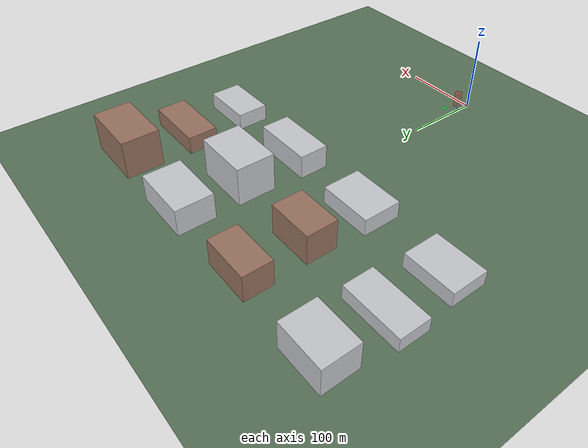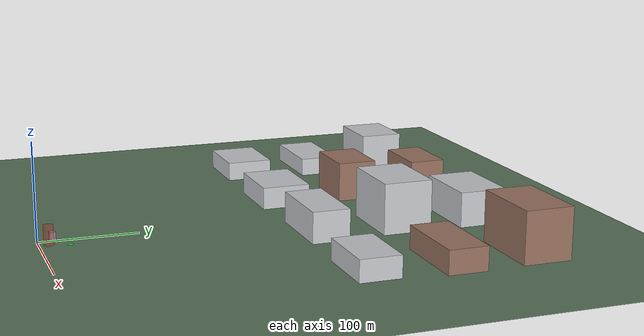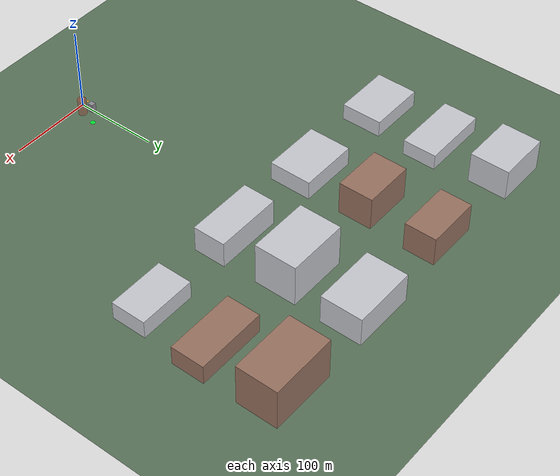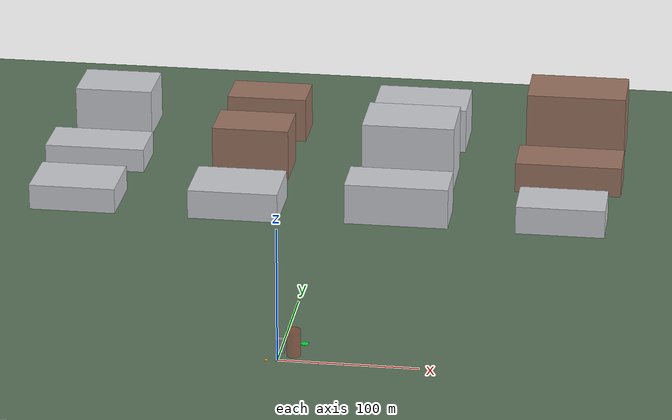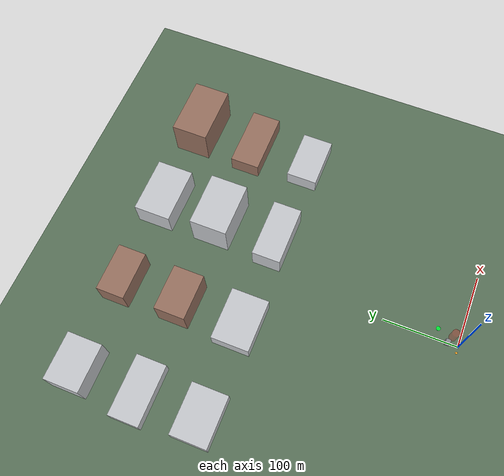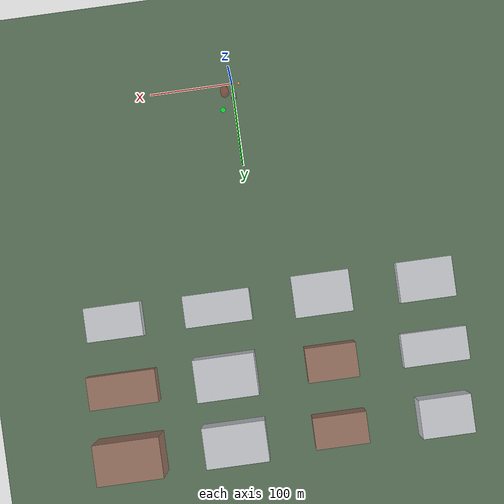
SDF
<?xml version="1.0" encoding="UTF-8"?>
<sdf version="1.9">
  <world name="simple_recon_v0_1">
    <physics name="4ms" type="ode">
      <max_step_size>0.004</max_step_size>
      <real_time_factor>1.0</real_time_factor>
      <real_time_update_rate>250</real_time_update_rate>
    </physics>
    <gravity>0 0 -9.8</gravity>
    <magnetic_field>6e-06 2.3e-05 -4.2e-05</magnetic_field>
    <atmosphere type="adiabatic"/>
    <scene>
      <grid>false</grid>
      <ambient>0.4 0.4 0.4 1</ambient>
      <background>0.65 0.72 0.78 1</background>
      <shadows>false</shadows>
    </scene>
    <spherical_coordinates>
      <surface_model>EARTH_WGS84</surface_model>
      <world_frame_orientation>ENU</world_frame_orientation>
      <latitude_deg>47.3979709</latitude_deg>
      <longitude_deg>8.5461639</longitude_deg>
      <elevation>0</elevation>
    </spherical_coordinates>

    <light name="sun" type="directional">
      <cast_shadows>false</cast_shadows>
      <pose>0 0 10 0 0 0</pose>
      <diffuse>0.8 0.8 0.8 1</diffuse>
      <specular>0.2 0.2 0.2 1</specular>
      <direction>-0.5 0.1 -0.9</direction>
    </light>

    <model name="ground_plane">
      <static>true</static>
      <link name="link">
        <collision name="collision">
          <geometry><plane><normal>0 0 1</normal><size>2000 2000</size></plane></geometry>
        </collision>
        <visual name="visual">
          <geometry><plane><normal>0 0 1</normal><size>2000 2000</size></plane></geometry>
          <material><ambient>0.25 0.35 0.25 1</ambient><diffuse>0.35 0.45 0.35 1</diffuse></material>
        </visual>
      </link>
    </model>

    <model name="building-001">
      <static>true</static>
      <!-- Scene NED (15, 0, -5) -> Gazebo ENU (0, 15, 5). -->
      <pose>0 15 5 0 0 0</pose>
      <link name="link">
        <collision name="collision"><geometry><box><size>6 6 10</size></box></geometry></collision>
        <visual name="visual">
          <geometry><box><size>6 6 10</size></box></geometry>
          <material><ambient>0.45 0.45 0.48 1</ambient><diffuse>0.55 0.55 0.58 1</diffuse></material>
        </visual>
      </link>
    </model>

    <model name="target-001-marker">
      <static>true</static>
      <!-- Scene NED (30, 15, 0) -> Gazebo ENU (15, 30, 0). -->
      <pose>15 30 0.05 0 0 0</pose>
      <link name="link">
        <visual name="visual">
          <geometry><cylinder><radius>3</radius><length>0.1</length></cylinder></geometry>
          <material><ambient>0.0 0.8 0.2 1</ambient><diffuse>0.0 0.9 0.2 1</diffuse></material>
        </visual>
      </link>
    </model>

    <model name="nfz-001-marker">
      <static>true</static>
      <pose>10 10 10 0 0 0</pose>
      <link name="link">
        <visual name="visual">
          <geometry><cylinder><radius>5</radius><length>20</length></cylinder></geometry>
          <material><ambient>1 0 0 0.25</ambient><diffuse>1 0 0 0.25</diffuse></material>
        </visual>
      </link>
    </model>

    <model name="landing-pad-UAV-01">
      <static>true</static>
      <pose>0 0 0.025 0 0 0</pose>
      <link name="link">
        <visual name="visual">
          <geometry><cylinder><radius>1.5</radius><length>0.05</length></cylinder></geometry>
          <material><ambient>0.1 0.45 0.9 1</ambient><diffuse>0.15 0.55 1 1</diffuse></material>
        </visual>
      </link>
    </model>

    <model name="landing-pad-UAV-02">
      <static>true</static>
      <!-- Scene NED (0, 8, 0) -> Gazebo ENU (8, 0, 0). -->
      <pose>8 0 0.025 0 0 0</pose>
      <link name="link">
        <visual name="visual">
          <geometry><cylinder><radius>1.5</radius><length>0.05</length></cylinder></geometry>
          <material><ambient>0.1 0.7 0.4 1</ambient><diffuse>0.15 0.85 0.5 1</diffuse></material>
        </visual>
      </link>
    </model>

    <model name="landing-pad-UAV-03">
      <static>true</static>
      <!-- Scene NED (0, -8, 0) -> Gazebo ENU (-8, 0, 0). -->
      <pose>-8 0 0.025 0 0 0</pose>
      <link name="link">
        <visual name="visual">
          <geometry><cylinder><radius>1.5</radius><length>0.05</length></cylinder></geometry>
          <material><ambient>0.85 0.55 0.1 1</ambient><diffuse>1 0.65 0.15 1</diffuse></material>
        </visual>
      </link>
    </model>

    <!-- BEGIN GENERATED city-world: city-block-4-3 (改 city-layout.js 后重跑生成器) -->
    <model name="city-block-4-3">
      <static>true</static>
      <pose>0 0 0 0 0 0</pose>
      <link name="link-block-4-3-0-0">
        <pose>-199.750 268.000 10.000 0 0 0</pose>
        <collision name="collision">
          <geometry><box><size>67.620 48.915 20.000</size></box></geometry>
        </collision>
        <visual name="visual">
          <geometry><box><size>67.620 48.915 20.000</size></box></geometry>
          <material><ambient>0.78 0.79 0.81 1</ambient><diffuse>0.78 0.79 0.81 1</diffuse></material>
        </visual>
      </link>
      <link name="link-block-4-3-0-1">
        <pose>-199.750 350.000 9.500 0 0 0</pose>
        <collision name="collision">
          <geometry><box><size>79.971 40.734 19.000</size></box></geometry>
        </collision>
        <visual name="visual">
          <geometry><box><size>79.971 40.734 19.000</size></box></geometry>
          <material><ambient>0.78 0.79 0.81 1</ambient><diffuse>0.78 0.79 0.81 1</diffuse></material>
        </visual>
      </link>
      <link name="link-block-4-3-0-2">
        <pose>-199.750 432.000 19.000 0 0 0</pose>
        <collision name="collision">
          <geometry><box><size>62.812 46.662 38.000</size></box></geometry>
        </collision>
        <visual name="visual">
          <geometry><box><size>62.812 46.662 38.000</size></box></geometry>
          <material><ambient>0.78 0.79 0.81 1</ambient><diffuse>0.78 0.79 0.81 1</diffuse></material>
        </visual>
      </link>
      <link name="link-block-4-3-1-0">
        <pose>-73.250 268.000 11.500 0 0 0</pose>
        <collision name="collision">
          <geometry><box><size>70.151 50.736 23.000</size></box></geometry>
        </collision>
        <visual name="visual">
          <geometry><box><size>70.151 50.736 23.000</size></box></geometry>
          <material><ambient>0.78 0.79 0.81 1</ambient><diffuse>0.78 0.79 0.81 1</diffuse></material>
        </visual>
      </link>
      <link name="link-block-4-3-1-1">
        <pose>-73.250 350.000 20.500 0 0 0</pose>
        <collision name="collision">
          <geometry><box><size>60.923 41.103 41.000</size></box></geometry>
        </collision>
        <visual name="visual">
          <geometry><box><size>60.923 41.103 41.000</size></box></geometry>
          <material><ambient>0.60 0.45 0.38 1</ambient><diffuse>0.60 0.45 0.38 1</diffuse></material>
        </visual>
      </link>
      <link name="link-block-4-3-1-2">
        <pose>-73.250 432.000 18.000 0 0 0</pose>
        <collision name="collision">
          <geometry><box><size>64.473 37.894 36.000</size></box></geometry>
        </collision>
        <visual name="visual">
          <geometry><box><size>64.473 37.894 36.000</size></box></geometry>
          <material><ambient>0.60 0.45 0.38 1</ambient><diffuse>0.60 0.45 0.38 1</diffuse></material>
        </visual>
      </link>
      <link name="link-block-4-3-2-0">
        <pose>53.250 268.000 16.000 0 0 0</pose>
        <collision name="collision">
          <geometry><box><size>80.361 38.620 32.000</size></box></geometry>
        </collision>
        <visual name="visual">
          <geometry><box><size>80.361 38.620 32.000</size></box></geometry>
          <material><ambient>0.78 0.79 0.81 1</ambient><diffuse>0.78 0.79 0.81 1</diffuse></material>
        </visual>
      </link>
      <link name="link-block-4-3-2-1">
        <pose>53.250 350.000 26.000 0 0 0</pose>
        <collision name="collision">
          <geometry><box><size>72.854 50.366 52.000</size></box></geometry>
        </collision>
        <visual name="visual">
          <geometry><box><size>72.854 50.366 52.000</size></box></geometry>
          <material><ambient>0.78 0.79 0.81 1</ambient><diffuse>0.78 0.79 0.81 1</diffuse></material>
        </visual>
      </link>
      <link name="link-block-4-3-2-2">
        <pose>53.250 432.000 18.000 0 0 0</pose>
        <collision name="collision">
          <geometry><box><size>75.775 49.345 36.000</size></box></geometry>
        </collision>
        <visual name="visual">
          <geometry><box><size>75.775 49.345 36.000</size></box></geometry>
          <material><ambient>0.78 0.79 0.81 1</ambient><diffuse>0.78 0.79 0.81 1</diffuse></material>
        </visual>
      </link>
      <link name="link-block-4-3-3-0">
        <pose>179.750 268.000 11.000 0 0 0</pose>
        <collision name="collision">
          <geometry><box><size>68.417 41.528 22.000</size></box></geometry>
        </collision>
        <visual name="visual">
          <geometry><box><size>68.417 41.528 22.000</size></box></geometry>
          <material><ambient>0.78 0.79 0.81 1</ambient><diffuse>0.78 0.79 0.81 1</diffuse></material>
        </visual>
      </link>
      <link name="link-block-4-3-3-1">
        <pose>179.750 350.000 12.000 0 0 0</pose>
        <collision name="collision">
          <geometry><box><size>83.414 39.776 24.000</size></box></geometry>
        </collision>
        <visual name="visual">
          <geometry><box><size>83.414 39.776 24.000</size></box></geometry>
          <material><ambient>0.60 0.45 0.38 1</ambient><diffuse>0.60 0.45 0.38 1</diffuse></material>
        </visual>
      </link>
      <link name="link-block-4-3-3-2">
        <pose>179.750 432.000 26.000 0 0 0</pose>
        <collision name="collision">
          <geometry><box><size>79.234 49.012 52.000</size></box></geometry>
        </collision>
        <visual name="visual">
          <geometry><box><size>79.234 49.012 52.000</size></box></geometry>
          <material><ambient>0.60 0.45 0.38 1</ambient><diffuse>0.60 0.45 0.38 1</diffuse></material>
        </visual>
      </link>
    </model>
    <!-- END GENERATED city-world: city-block-4-3 -->

</world>
</sdf>
